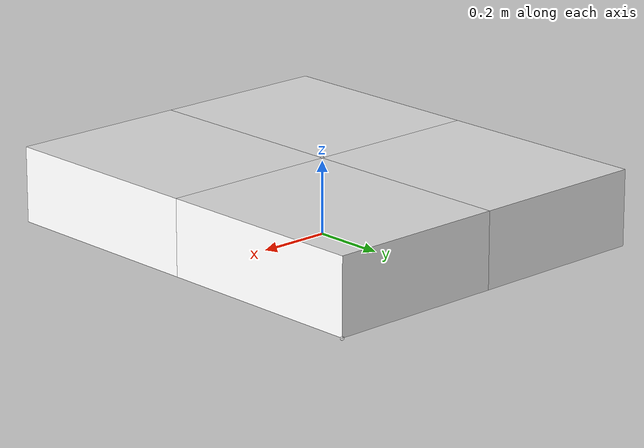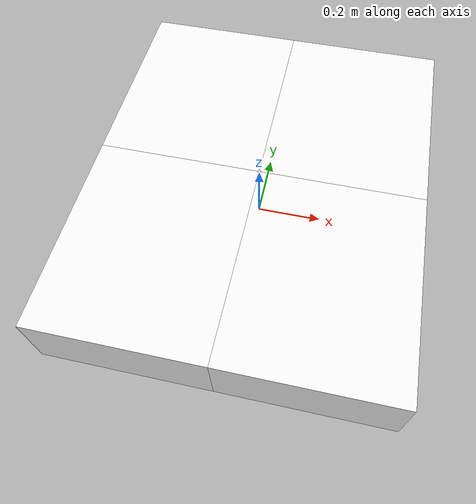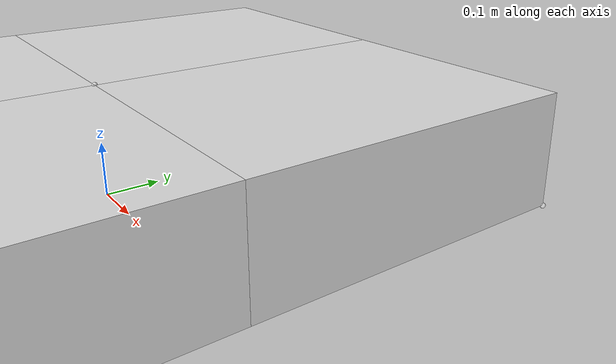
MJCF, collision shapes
<mujoco model="pallet_b1">
  <default>
    <default class="visual">
      <geom group="1" type="mesh" contype="0" conaffinity="0" density="100"/>
    </default>
    <default class="collision">
      <geom group="0" type="mesh" density="100" solimp="0.95 0.98 0.001" solref="0.004 1" rgba="1 1 1 0.25"/>
    </default>
  </default>
  <asset>
    <texture type="2d" name="T_Pallet_A2_Albedo" file="textures/T_Pallet_A2_Albedo.png"/>
    <material name="Pallet.002" texture="T_Pallet_A2_Albedo" specular="0.5" shininess="0.25"/>
    <mesh file="meshes/pallet_b1.obj" name="pallet_b1"/>
  </asset>
  <worldbody>
    <body>
      <body name="object">
        <geom material="Pallet.002" mesh="pallet_b1" class="visual"/>
        <geom type="box" pos="0.2503567221251273 -0.3022422423095048 0.1042493293414668" size="0.10384882420020408 0.2503090024402064 0.30233956948456053" quat="0.4999147415648136 -0.5000246711839438 0.4999847085249831 0.500075864859285" class="collision"/>
        <geom type="box" pos="0.25023512895709366 0.3024368843277908 0.10423798489395102" size="0.10384882420020408 0.2503090024402064 0.30233956948456053" quat="0.4999147415648136 -0.5000246711839438 0.4999847085249831 0.500075864859285" class="collision"/>
        <geom type="box" pos="-0.2502612689593895 -0.30234290898827487 0.10430998548159305" size="0.10384882420020408 0.2503090024402064 0.30233956948456053" quat="0.4999147415648136 -0.5000246711839438 0.4999847085249831 0.500075864859285" class="collision"/>
        <geom type="box" pos="-0.2503828621274231 0.30233621764902074 0.10429864103407727" size="0.10384882420020408 0.2503090024402064 0.30233956948456053" quat="0.4999147415648136 -0.5000246711839438 0.4999847085249831 0.500075864859285" class="collision"/>
      </body>
      <site name="bottom_site" pos="0 0 0.000474" rgba="1 1 1 0.5" size="0.005"/>
      <site name="top_site" pos="0 0 0.208172" rgba="1 1 1 0.5" size="0.005"/>
      <site name="horizontal_radius_site" pos="0.500621 0.604701 0" rgba="1 1 1 0.5" size="0.005"/>
    </body>
  </worldbody>
</mujoco>
